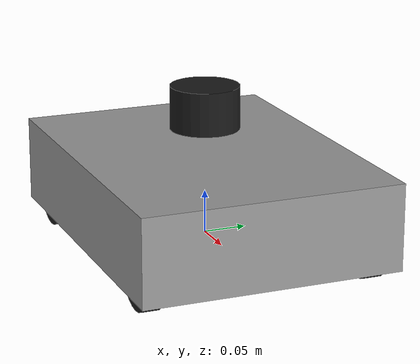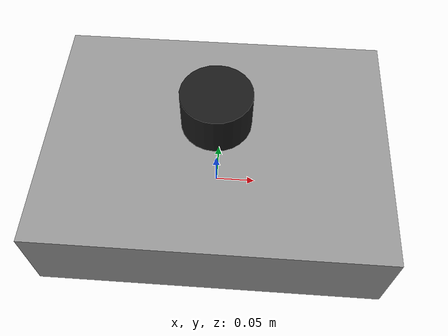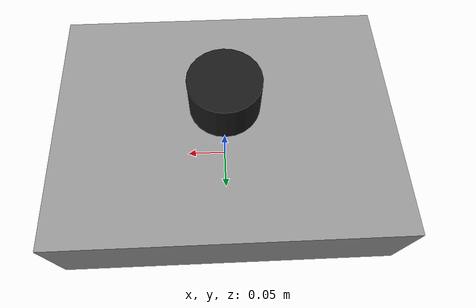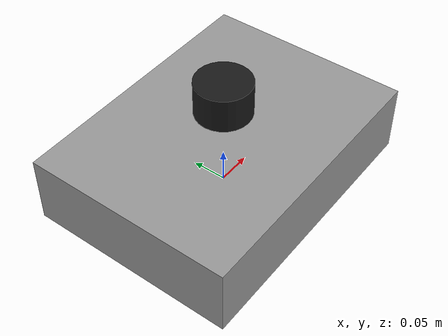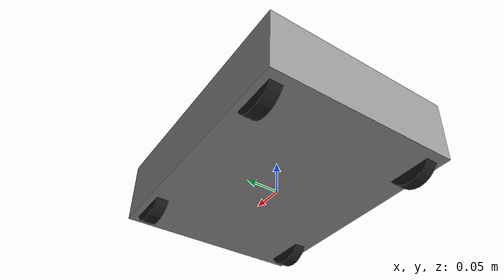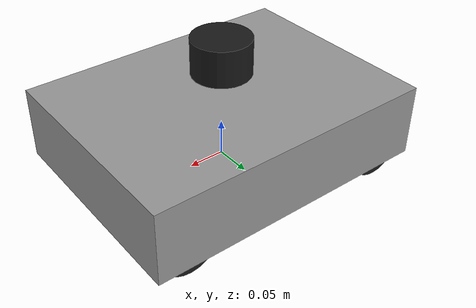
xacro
<?xml version="1.0"?>
<robot name="delivery_bot" xmlns:xacro="http://ros.org/wiki/xacro">

  <!-- Chassis -->
  <link name="base_link">
    <visual>
      <geometry>
        <box size="0.4 0.3 0.1"/>
      </geometry>
      <origin xyz="0 0 0.05" rpy="0 0 0"/>
      <material name="grey">
        <color rgba="0.6 0.6 0.6 1.0"/>
      </material>
    </visual>
  </link>

  <!-- LIDAR -->
  <link name="laser_link">
    <visual>
      <geometry>
        <cylinder length="0.05" radius="0.04"/>
      </geometry>
      <origin xyz="0 0 0" rpy="0 0 0"/>
      <material name="black">
        <color rgba="0.1 0.1 0.1 1.0"/>
      </material>
    </visual>
  </link>

  <joint name="laser_joint" type="fixed">
    <parent link="base_link"/>
    <child link="laser_link"/>
    <origin xyz="0 0 0.15" rpy="0 0 0"/>
  </joint>

  <!-- Wheels -->
  <!-- Left Front -->
  <link name="left_front_wheel">
    <visual>
      <geometry>
        <cylinder radius="0.04" length="0.02"/>
      </geometry>
      <origin xyz="0 0 0" rpy="1.5708 0 0"/>
      <material name="black"/>
    </visual>
  </link>
  <joint name="left_front_joint" type="continuous">
    <parent link="base_link"/>
    <child link="left_front_wheel"/>
    <origin xyz="0.15 0.13 0.02" rpy="0 0 0"/>
    <axis xyz="0 1 0"/>
  </joint>

  <!-- Left Rear -->
  <link name="left_rear_wheel">
    <visual>
      <geometry>
        <cylinder radius="0.04" length="0.02"/>
      </geometry>
      <origin xyz="0 0 0" rpy="1.5708 0 0"/>
      <material name="black"/>
    </visual>
  </link>
  <joint name="left_rear_joint" type="continuous">
    <parent link="base_link"/>
    <child link="left_rear_wheel"/>
    <origin xyz="-0.15 0.13 0.02" rpy="0 0 0"/>
    <axis xyz="0 1 0"/>
  </joint>

  <!-- Right Front -->
  <link name="right_front_wheel">
    <visual>
      <geometry>
        <cylinder radius="0.04" length="0.02"/>
      </geometry>
      <origin xyz="0 0 0" rpy="1.5708 0 0"/>
      <material name="black"/>
    </visual>
  </link>
  <joint name="right_front_joint" type="continuous">
    <parent link="base_link"/>
    <child link="right_front_wheel"/>
    <origin xyz="0.15 -0.13 0.02" rpy="0 0 0"/>
    <axis xyz="0 1 0"/>
  </joint>

  <!-- Right Rear -->
  <link name="right_rear_wheel">
    <visual>
      <geometry>
        <cylinder radius="0.04" length="0.02"/>
      </geometry>
      <origin xyz="0 0 0" rpy="1.5708 0 0"/>
      <material name="black"/>
    </visual>
  </link>
  <joint name="right_rear_joint" type="continuous">
    <parent link="base_link"/>
    <child link="right_rear_wheel"/>
    <origin xyz="-0.15 -0.13 0.02" rpy="0 0 0"/>
    <axis xyz="0 1 0"/>
  </joint>

</robot>
